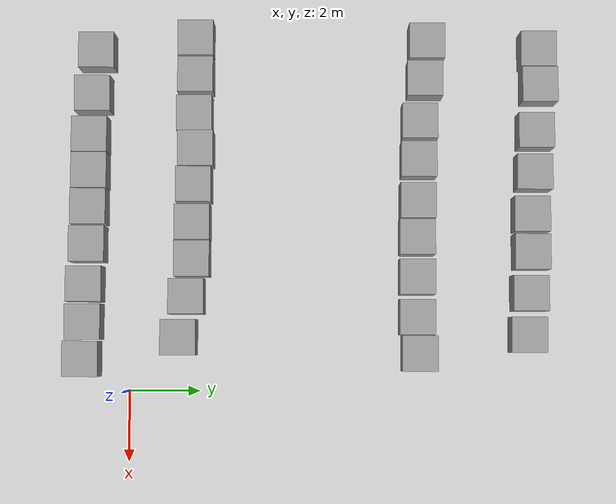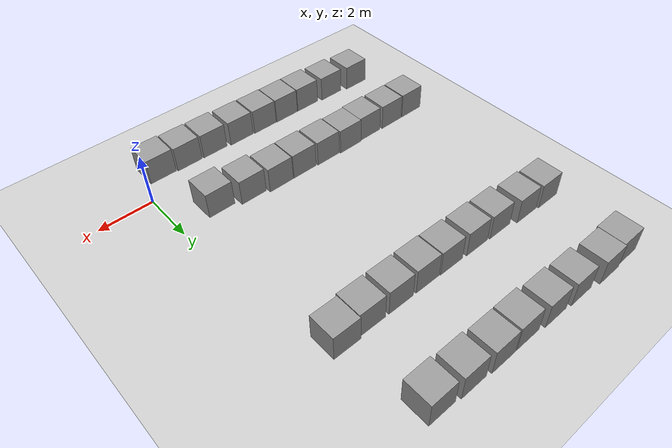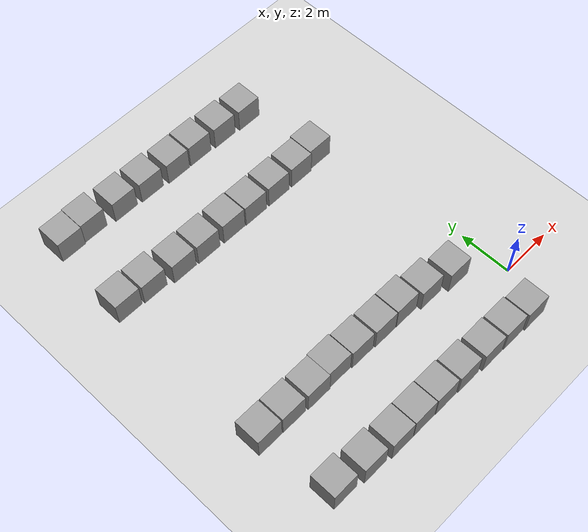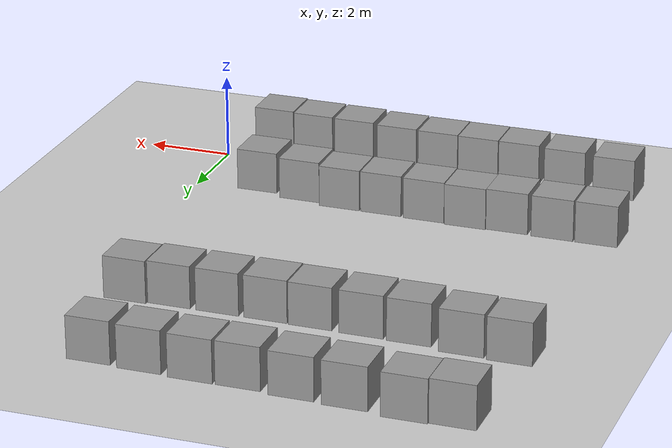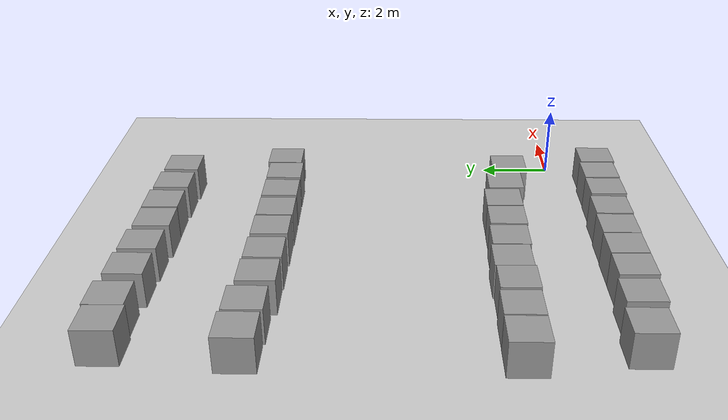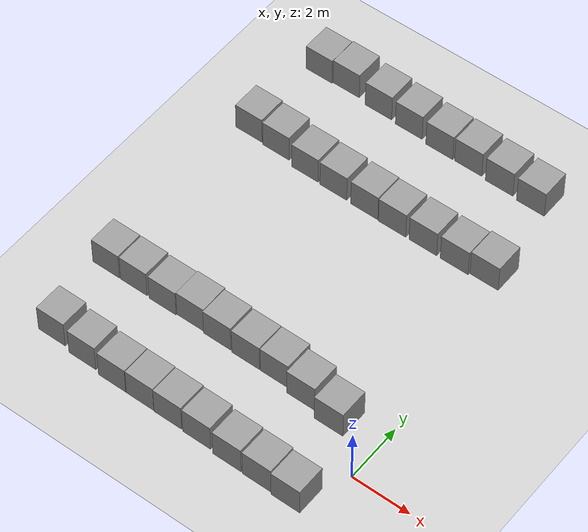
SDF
<sdf version="1.7">
 <world name="default">
  <model name="ground_plane">
   <static>1</static>
   <link name="link">
    <collision name="collision">
     <geometry><plane><normal>0 0 1</normal><size>100 100</size></plane></geometry>
     <surface><friction><ode><mu>100</mu><mu2>50</mu2></ode></friction></surface>
    </collision>
    <visual name="visual">
     <cast_shadows>0</cast_shadows>
     <geometry><plane><normal>0 0 1</normal><size>100 100</size></plane></geometry>
     <material>
      <script><uri>file://media/materials/scripts/gazebo.material</uri><name>Gazebo/Grey</name></script>
     </material>
    </visual>
   </link>
  </model>
  <model name="unit_box_68">
   <pose>-1.60407 11.2656 0.499995 -1e-05 0 0</pose>
   <link name="link">
    <inertial>
     <mass>1</mass>
     <inertia>
      <ixx>0.166667</ixx>
      <ixy>0</ixy>
      <ixz>0</ixz>
      <iyy>0.166667</iyy>
      <iyz>0</iyz>
      <izz>0.166667</izz>
     </inertia>
    </inertial>
    <collision name="collision"><geometry><box><size>1 1 1</size></box></geometry></collision>
    <visual name="visual">
     <geometry><box><size>1 1 1</size></box></geometry>
     <material>
      <script><name>Gazebo/Grey</name><uri>file://media/materials/scripts/gazebo.material</uri></script>
     </material>
    </visual>
   </link>
  </model>
  <model name="unit_box_69">
   <pose>-1.07686 8.20701 0.499995 0 1e-05 0</pose>
   <link name="link">
    <inertial>
     <mass>1</mass>
     <inertia>
      <ixx>0.166667</ixx>
      <ixy>0</ixy>
      <ixz>0</ixz>
      <iyy>0.166667</iyy>
      <iyz>0</iyz>
      <izz>0.166667</izz>
     </inertia>
    </inertial>
    <collision name="collision"><geometry><box><size>1 1 1</size></box></geometry></collision>
    <visual name="visual">
     <geometry><box><size>1 1 1</size></box></geometry>
     <material>
      <script><name>Gazebo/Grey</name><uri>file://media/materials/scripts/gazebo.material</uri></script>
     </material>
    </visual>
   </link>
  </model>
  <model name="unit_box_70">
   <pose>-2.77324 11.3221 0.499995 -1e-05 0 0</pose>
   <link name="link">
    <inertial>
     <mass>1</mass>
     <inertia>
      <ixx>0.166667</ixx>
      <ixy>0</ixy>
      <ixz>0</ixz>
      <iyy>0.166667</iyy>
      <iyz>0</iyz>
      <izz>0.166667</izz>
     </inertia>
    </inertial>
    <collision name="collision"><geometry><box><size>1 1 1</size></box></geometry></collision>
    <visual name="visual">
     <geometry><box><size>1 1 1</size></box></geometry>
     <material>
      <script><name>Gazebo/Grey</name><uri>file://media/materials/scripts/gazebo.material</uri></script>
     </material>
    </visual>
   </link>
  </model>
  <model name="unit_box_71">
   <pose>-2.09643 8.13987 0.499995 0 1e-05 0</pose>
   <link name="link">
    <inertial>
     <mass>1</mass>
     <inertia>
      <ixx>0.166667</ixx>
      <ixy>0</ixy>
      <ixz>0</ixz>
      <iyy>0.166667</iyy>
      <iyz>0</iyz>
      <izz>0.166667</izz>
     </inertia>
    </inertial>
    <collision name="collision"><geometry><box><size>1 1 1</size></box></geometry></collision>
    <visual name="visual">
     <geometry><box><size>1 1 1</size></box></geometry>
     <material>
      <script><name>Gazebo/Grey</name><uri>file://media/materials/scripts/gazebo.material</uri></script>
     </material>
    </visual>
   </link>
  </model>
  <model name="unit_box_72">
   <pose>-3.9399 11.375 0.499995 -1e-05 0 0</pose>
   <link name="link">
    <inertial>
     <mass>1</mass>
     <inertia>
      <ixx>0.166667</ixx>
      <ixy>0</ixy>
      <ixz>0</ixz>
      <iyy>0.166667</iyy>
      <iyz>0</iyz>
      <izz>0.166667</izz>
     </inertia>
    </inertial>
    <collision name="collision"><geometry><box><size>1 1 1</size></box></geometry></collision>
    <visual name="visual">
     <geometry><box><size>1 1 1</size></box></geometry>
     <material>
      <script><name>Gazebo/Grey</name><uri>file://media/materials/scripts/gazebo.material</uri></script>
     </material>
    </visual>
   </link>
  </model>
  <model name="unit_box_73">
   <pose>-3.22691 8.14265 0.499995 0 1e-05 0</pose>
   <link name="link">
    <inertial>
     <mass>1</mass>
     <inertia>
      <ixx>0.166667</ixx>
      <ixy>0</ixy>
      <ixz>0</ixz>
      <iyy>0.166667</iyy>
      <iyz>0</iyz>
      <izz>0.166667</izz>
     </inertia>
    </inertial>
    <collision name="collision"><geometry><box><size>1 1 1</size></box></geometry></collision>
    <visual name="visual">
     <geometry><box><size>1 1 1</size></box></geometry>
     <material>
      <script><name>Gazebo/Grey</name><uri>file://media/materials/scripts/gazebo.material</uri></script>
     </material>
    </visual>
   </link>
  </model>
  <model name="unit_box_74">
   <pose>-5.00002 11.3706 0.499995 -1e-05 0 0</pose>
   <link name="link">
    <inertial>
     <mass>1</mass>
     <inertia>
      <ixx>0.166667</ixx>
      <ixy>0</ixy>
      <ixz>0</ixz>
      <iyy>0.166667</iyy>
      <iyz>0</iyz>
      <izz>0.166667</izz>
     </inertia>
    </inertial>
    <collision name="collision"><geometry><box><size>1 1 1</size></box></geometry></collision>
    <visual name="visual">
     <geometry><box><size>1 1 1</size></box></geometry>
     <material>
      <script><name>Gazebo/Grey</name><uri>file://media/materials/scripts/gazebo.material</uri></script>
     </material>
    </visual>
   </link>
  </model>
  <model name="unit_box_75">
   <pose>-6.19269 11.4491 0.499995 0 1e-05 0</pose>
   <link name="link">
    <inertial>
     <mass>1</mass>
     <inertia>
      <ixx>0.166667</ixx>
      <ixy>0</ixy>
      <ixz>0</ixz>
      <iyy>0.166667</iyy>
      <iyz>0</iyz>
      <izz>0.166667</izz>
     </inertia>
    </inertial>
    <collision name="collision"><geometry><box><size>1 1 1</size></box></geometry></collision>
    <visual name="visual">
     <geometry><box><size>1 1 1</size></box></geometry>
     <material>
      <script><name>Gazebo/Grey</name><uri>file://media/materials/scripts/gazebo.material</uri></script>
     </material>
    </visual>
   </link>
  </model>
  <model name="unit_box_76">
   <pose>-7.36966 11.5014 0.499995 -1e-05 0 0</pose>
   <link name="link">
    <inertial>
     <mass>1</mass>
     <inertia>
      <ixx>0.166667</ixx>
      <ixy>0</ixy>
      <ixz>0</ixz>
      <iyy>0.166667</iyy>
      <iyz>0</iyz>
      <izz>0.166667</izz>
     </inertia>
    </inertial>
    <collision name="collision"><geometry><box><size>1 1 1</size></box></geometry></collision>
    <visual name="visual">
     <geometry><box><size>1 1 1</size></box></geometry>
     <material>
      <script><name>Gazebo/Grey</name><uri>file://media/materials/scripts/gazebo.material</uri></script>
     </material>
    </visual>
   </link>
  </model>
  <model name="unit_box_77">
   <pose>-8.67595 11.6101 0.499995 0 1e-05 0</pose>
   <link name="link">
    <inertial>
     <mass>1</mass>
     <inertia>
      <ixx>0.166667</ixx>
      <ixy>0</ixy>
      <ixz>0</ixz>
      <iyy>0.166667</iyy>
      <iyz>0</iyz>
      <izz>0.166667</izz>
     </inertia>
    </inertial>
    <collision name="collision"><geometry><box><size>1 1 1</size></box></geometry></collision>
    <visual name="visual">
     <geometry><box><size>1 1 1</size></box></geometry>
     <material>
      <script><name>Gazebo/Grey</name><uri>file://media/materials/scripts/gazebo.material</uri></script>
     </material>
    </visual>
   </link>
  </model>
  <model name="unit_box_78">
   <pose>-9.68226 11.5677 0.499995 0 -1e-05 0</pose>
   <link name="link">
    <inertial>
     <mass>1</mass>
     <inertia>
      <ixx>0.166667</ixx>
      <ixy>0</ixy>
      <ixz>0</ixz>
      <iyy>0.166667</iyy>
      <iyz>0</iyz>
      <izz>0.166667</izz>
     </inertia>
    </inertial>
    <collision name="collision"><geometry><box><size>1 1 1</size></box></geometry></collision>
    <visual name="visual">
     <geometry><box><size>1 1 1</size></box></geometry>
     <material>
      <script><name>Gazebo/Grey</name><uri>file://media/materials/scripts/gazebo.material</uri></script>
     </material>
    </visual>
   </link>
  </model>
  <model name="unit_box_80">
   <pose>-4.3458 8.14363 0.499995 -1e-05 0 0</pose>
   <link name="link">
    <inertial>
     <mass>1</mass>
     <inertia>
      <ixx>0.166667</ixx>
      <ixy>0</ixy>
      <ixz>0</ixz>
      <iyy>0.166667</iyy>
      <iyz>0</iyz>
      <izz>0.166667</izz>
     </inertia>
    </inertial>
    <collision name="collision"><geometry><box><size>1 1 1</size></box></geometry></collision>
    <visual name="visual">
     <geometry><box><size>1 1 1</size></box></geometry>
     <material>
      <script><name>Gazebo/Grey</name><uri>file://media/materials/scripts/gazebo.material</uri></script>
     </material>
    </visual>
   </link>
  </model>
  <model name="unit_box_81">
   <pose>-5.37999 8.16639 0.499995 -1e-05 0 0</pose>
   <link name="link">
    <inertial>
     <mass>1</mass>
     <inertia>
      <ixx>0.166667</ixx>
      <ixy>0</ixy>
      <ixz>0</ixz>
      <iyy>0.166667</iyy>
      <iyz>0</iyz>
      <izz>0.166667</izz>
     </inertia>
    </inertial>
    <collision name="collision"><geometry><box><size>1 1 1</size></box></geometry></collision>
    <visual name="visual">
     <geometry><box><size>1 1 1</size></box></geometry>
     <material>
      <script><name>Gazebo/Grey</name><uri>file://media/materials/scripts/gazebo.material</uri></script>
     </material>
    </visual>
   </link>
  </model>
  <model name="unit_box_82">
   <pose>-6.5467 8.19298 0.499995 0 1e-05 0</pose>
   <link name="link">
    <inertial>
     <mass>1</mass>
     <inertia>
      <ixx>0.166667</ixx>
      <ixy>0</ixy>
      <ixz>0</ixz>
      <iyy>0.166667</iyy>
      <iyz>0</iyz>
      <izz>0.166667</izz>
     </inertia>
    </inertial>
    <collision name="collision"><geometry><box><size>1 1 1</size></box></geometry></collision>
    <visual name="visual">
     <geometry><box><size>1 1 1</size></box></geometry>
     <material>
      <script><name>Gazebo/Grey</name><uri>file://media/materials/scripts/gazebo.material</uri></script>
     </material>
    </visual>
   </link>
  </model>
  <model name="unit_box_83">
   <pose>-7.62958 8.22347 0.499995 0 -1e-05 0</pose>
   <link name="link">
    <inertial>
     <mass>1</mass>
     <inertia>
      <ixx>0.166667</ixx>
      <ixy>0</ixy>
      <ixz>0</ixz>
      <iyy>0.166667</iyy>
      <iyz>0</iyz>
      <izz>0.166667</izz>
     </inertia>
    </inertial>
    <collision name="collision"><geometry><box><size>1 1 1</size></box></geometry></collision>
    <visual name="visual">
     <geometry><box><size>1 1 1</size></box></geometry>
     <material>
      <script><name>Gazebo/Grey</name><uri>file://media/materials/scripts/gazebo.material</uri></script>
     </material>
    </visual>
   </link>
  </model>
  <model name="unit_box_84">
   <pose>-8.83422 8.36705 0.499995 0 1e-05 0</pose>
   <link name="link">
    <inertial>
     <mass>1</mass>
     <inertia>
      <ixx>0.166667</ixx>
      <ixy>0</ixy>
      <ixz>0</ixz>
      <iyy>0.166667</iyy>
      <iyz>0</iyz>
      <izz>0.166667</izz>
     </inertia>
    </inertial>
    <collision name="collision"><geometry><box><size>1 1 1</size></box></geometry></collision>
    <visual name="visual">
     <geometry><box><size>1 1 1</size></box></geometry>
     <material>
      <script><name>Gazebo/Grey</name><uri>file://media/materials/scripts/gazebo.material</uri></script>
     </material>
    </visual>
   </link>
  </model>
  <model name="unit_box_87">
   <pose>-9.9062 8.41725 0.499995 0 1e-05 0</pose>
   <link name="link">
    <inertial>
     <mass>1</mass>
     <inertia>
      <ixx>0.166667</ixx>
      <ixy>0</ixy>
      <ixz>0</ixz>
      <iyy>0.166667</iyy>
      <iyz>0</iyz>
      <izz>0.166667</izz>
     </inertia>
    </inertial>
    <collision name="collision"><geometry><box><size>1 1 1</size></box></geometry></collision>
    <visual name="visual">
     <geometry><box><size>1 1 1</size></box></geometry>
     <material>
      <script><name>Gazebo/Grey</name><uri>file://media/materials/scripts/gazebo.material</uri></script>
     </material>
    </visual>
   </link>
  </model>
  <model name="unit_box_117">
   <pose>-9.97691 1.86931 0.499995 0 1e-05 0</pose>
   <link name="link">
    <inertial>
     <mass>1</mass>
     <inertia>
      <ixx>0.166667</ixx>
      <ixy>0</ixy>
      <ixz>0</ixz>
      <iyy>0.166667</iyy>
      <iyz>0</iyz>
      <izz>0.166667</izz>
     </inertia>
    </inertial>
    <collision name="collision"><geometry><box><size>1 1 1</size></box></geometry></collision>
    <visual name="visual">
     <geometry><box><size>1 1 1</size></box></geometry>
     <material>
      <script><name>Gazebo/Grey</name><uri>file://media/materials/scripts/gazebo.material</uri></script>
     </material>
    </visual>
   </link>
  </model>
  <model name="unit_box_118">
   <pose>-8.93478 1.86691 0.499995 1e-05 -0 0</pose>
   <link name="link">
    <inertial>
     <mass>1</mass>
     <inertia>
      <ixx>0.166667</ixx>
      <ixy>0</ixy>
      <ixz>0</ixz>
      <iyy>0.166667</iyy>
      <iyz>0</iyz>
      <izz>0.166667</izz>
     </inertia>
    </inertial>
    <collision name="collision"><geometry><box><size>1 1 1</size></box></geometry></collision>
    <visual name="visual">
     <geometry><box><size>1 1 1</size></box></geometry>
     <material>
      <script><name>Gazebo/Grey</name><uri>file://media/materials/scripts/gazebo.material</uri></script>
     </material>
    </visual>
   </link>
  </model>
  <model name="unit_box_119">
   <pose>-7.84055 1.83815 0.499995 -0 -1e-05 0.002763</pose>
   <link name="link">
    <inertial>
     <mass>1</mass>
     <inertia>
      <ixx>0.166667</ixx>
      <ixy>0</ixy>
      <ixz>0</ixz>
      <iyy>0.166667</iyy>
      <iyz>0</iyz>
      <izz>0.166667</izz>
     </inertia>
    </inertial>
    <collision name="collision"><geometry><box><size>1 1 1</size></box></geometry></collision>
    <visual name="visual">
     <geometry><box><size>1 1 1</size></box></geometry>
     <material>
      <script><name>Gazebo/Grey</name><uri>file://media/materials/scripts/gazebo.material</uri></script>
     </material>
    </visual>
   </link>
  </model>
  <model name="unit_box_120">
   <pose>-6.84061 1.87689 0.499995 -0 1e-05 0.002709</pose>
   <link name="link">
    <inertial>
     <mass>1</mass>
     <inertia>
      <ixx>0.166667</ixx>
      <ixy>0</ixy>
      <ixz>0</ixz>
      <iyy>0.166667</iyy>
      <iyz>0</iyz>
      <izz>0.166667</izz>
     </inertia>
    </inertial>
    <collision name="collision"><geometry><box><size>1 1 1</size></box></geometry></collision>
    <visual name="visual">
     <geometry><box><size>1 1 1</size></box></geometry>
     <material>
      <script><name>Gazebo/Grey</name><uri>file://media/materials/scripts/gazebo.material</uri></script>
     </material>
    </visual>
   </link>
  </model>
  <model name="unit_box_121">
   <pose>-5.81978 1.82803 0.499995 0 1e-05 0</pose>
   <link name="link">
    <inertial>
     <mass>1</mass>
     <inertia>
      <ixx>0.166667</ixx>
      <ixy>0</ixy>
      <ixz>0</ixz>
      <iyy>0.166667</iyy>
      <iyz>0</iyz>
      <izz>0.166667</izz>
     </inertia>
    </inertial>
    <collision name="collision"><geometry><box><size>1 1 1</size></box></geometry></collision>
    <visual name="visual">
     <geometry><box><size>1 1 1</size></box></geometry>
     <material>
      <script><name>Gazebo/Grey</name><uri>file://media/materials/scripts/gazebo.material</uri></script>
     </material>
    </visual>
   </link>
  </model>
  <model name="unit_box_122">
   <pose>-4.75596 1.7931 0.499995 0 1e-05 0</pose>
   <link name="link">
    <inertial>
     <mass>1</mass>
     <inertia>
      <ixx>0.166667</ixx>
      <ixy>0</ixy>
      <ixz>0</ixz>
      <iyy>0.166667</iyy>
      <iyz>0</iyz>
      <izz>0.166667</izz>
     </inertia>
    </inertial>
    <collision name="collision"><geometry><box><size>1 1 1</size></box></geometry></collision>
    <visual name="visual">
     <geometry><box><size>1 1 1</size></box></geometry>
     <material>
      <script><name>Gazebo/Grey</name><uri>file://media/materials/scripts/gazebo.material</uri></script>
     </material>
    </visual>
   </link>
  </model>
  <model name="unit_box_123">
   <pose>-3.72552 1.78985 0.499995 0 1e-05 0</pose>
   <link name="link">
    <inertial>
     <mass>1</mass>
     <inertia>
      <ixx>0.166667</ixx>
      <ixy>0</ixy>
      <ixz>0</ixz>
      <iyy>0.166667</iyy>
      <iyz>0</iyz>
      <izz>0.166667</izz>
     </inertia>
    </inertial>
    <collision name="collision"><geometry><box><size>1 1 1</size></box></geometry></collision>
    <visual name="visual">
     <geometry><box><size>1 1 1</size></box></geometry>
     <material>
      <script><name>Gazebo/Grey</name><uri>file://media/materials/scripts/gazebo.material</uri></script>
     </material>
    </visual>
   </link>
  </model>
  <model name="unit_box_124">
   <pose>-2.66754 1.63848 0.499995 0 1e-05 0</pose>
   <link name="link">
    <inertial>
     <mass>1</mass>
     <inertia>
      <ixx>0.166667</ixx>
      <ixy>0</ixy>
      <ixz>0</ixz>
      <iyy>0.166667</iyy>
      <iyz>0</iyz>
      <izz>0.166667</izz>
     </inertia>
    </inertial>
    <collision name="collision"><geometry><box><size>1 1 1</size></box></geometry></collision>
    <visual name="visual">
     <geometry><box><size>1 1 1</size></box></geometry>
     <material>
      <script><name>Gazebo/Grey</name><uri>file://media/materials/scripts/gazebo.material</uri></script>
     </material>
    </visual>
   </link>
  </model>
  <model name="unit_box_125">
   <pose>-1.51822 1.42433 0.499995 -1e-05 -0 -0</pose>
   <link name="link">
    <inertial>
     <mass>1</mass>
     <inertia>
      <ixx>0.166667</ixx>
      <ixy>0</ixy>
      <ixz>0</ixz>
      <iyy>0.166667</iyy>
      <iyz>0</iyz>
      <izz>0.166667</izz>
     </inertia>
    </inertial>
    <collision name="collision"><geometry><box><size>1 1 1</size></box></geometry></collision>
    <visual name="visual">
     <geometry><box><size>1 1 1</size></box></geometry>
     <material>
      <script><name>Gazebo/Grey</name><uri>file://media/materials/scripts/gazebo.material</uri></script>
     </material>
    </visual>
   </link>
  </model>
  <model name="unit_box_128">
   <pose>-0.90612 -1.30563 0.499995 0 -1e-05 0</pose>
   <link name="link">
    <inertial>
     <mass>1</mass>
     <inertia>
      <ixx>0.166667</ixx>
      <ixy>0</ixy>
      <ixz>0</ixz>
      <iyy>0.166667</iyy>
      <iyz>0</iyz>
      <izz>0.166667</izz>
     </inertia>
    </inertial>
    <collision name="collision"><geometry><box><size>1 1 1</size></box></geometry></collision>
    <visual name="visual">
     <geometry><box><size>1 1 1</size></box></geometry>
     <material>
      <script><name>Gazebo/Grey</name><uri>file://media/materials/scripts/gazebo.material</uri></script>
     </material>
    </visual>
   </link>
  </model>
  <model name="unit_box_129">
   <pose>-1.94608 -1.25155 0.499995 -1e-05 0 0</pose>
   <link name="link">
    <inertial>
     <mass>1</mass>
     <inertia>
      <ixx>0.166667</ixx>
      <ixy>0</ixy>
      <ixz>0</ixz>
      <iyy>0.166667</iyy>
      <iyz>0</iyz>
      <izz>0.166667</izz>
     </inertia>
    </inertial>
    <collision name="collision"><geometry><box><size>1 1 1</size></box></geometry></collision>
    <visual name="visual">
     <geometry><box><size>1 1 1</size></box></geometry>
     <material>
      <script><name>Gazebo/Grey</name><uri>file://media/materials/scripts/gazebo.material</uri></script>
     </material>
    </visual>
   </link>
  </model>
  <model name="unit_box_130">
   <pose>-3.00827 -1.23218 0.499995 0 1e-05 0</pose>
   <link name="link">
    <inertial>
     <mass>1</mass>
     <inertia>
      <ixx>0.166667</ixx>
      <ixy>0</ixy>
      <ixz>0</ixz>
      <iyy>0.166667</iyy>
      <iyz>0</iyz>
      <izz>0.166667</izz>
     </inertia>
    </inertial>
    <collision name="collision"><geometry><box><size>1 1 1</size></box></geometry></collision>
    <visual name="visual">
     <geometry><box><size>1 1 1</size></box></geometry>
     <material>
      <script><name>Gazebo/Grey</name><uri>file://media/materials/scripts/gazebo.material</uri></script>
     </material>
    </visual>
   </link>
  </model>
  <model name="unit_box_131">
   <pose>-4.13807 -1.16413 0.499995 0 1e-05 0</pose>
   <link name="link">
    <inertial>
     <mass>1</mass>
     <inertia>
      <ixx>0.166667</ixx>
      <ixy>0</ixy>
      <ixz>0</ixz>
      <iyy>0.166667</iyy>
      <iyz>0</iyz>
      <izz>0.166667</izz>
     </inertia>
    </inertial>
    <collision name="collision"><geometry><box><size>1 1 1</size></box></geometry></collision>
    <visual name="visual">
     <geometry><box><size>1 1 1</size></box></geometry>
     <material>
      <script><name>Gazebo/Grey</name><uri>file://media/materials/scripts/gazebo.material</uri></script>
     </material>
    </visual>
   </link>
  </model>
  <model name="unit_box_132">
   <pose>-5.19182 -1.13485 0.499995 0 -1e-05 0</pose>
   <link name="link">
    <inertial>
     <mass>1</mass>
     <inertia>
      <ixx>0.166667</ixx>
      <ixy>0</ixy>
      <ixz>0</ixz>
      <iyy>0.166667</iyy>
      <iyz>0</iyz>
      <izz>0.166667</izz>
     </inertia>
    </inertial>
    <collision name="collision"><geometry><box><size>1 1 1</size></box></geometry></collision>
    <visual name="visual">
     <geometry><box><size>1 1 1</size></box></geometry>
     <material>
      <script><name>Gazebo/Grey</name><uri>file://media/materials/scripts/gazebo.material</uri></script>
     </material>
    </visual>
   </link>
  </model>
  <model name="unit_box_133">
   <pose>-6.21451 -1.11865 0.499995 0 -1e-05 0</pose>
   <link name="link">
    <inertial>
     <mass>1</mass>
     <inertia>
      <ixx>0.166667</ixx>
      <ixy>0</ixy>
      <ixz>0</ixz>
      <iyy>0.166667</iyy>
      <iyz>0</iyz>
      <izz>0.166667</izz>
     </inertia>
    </inertial>
    <collision name="collision"><geometry><box><size>1 1 1</size></box></geometry></collision>
    <visual name="visual">
     <geometry><box><size>1 1 1</size></box></geometry>
     <material>
      <script><name>Gazebo/Grey</name><uri>file://media/materials/scripts/gazebo.material</uri></script>
     </material>
    </visual>
   </link>
  </model>
  <model name="unit_box_134">
   <pose>-7.23651 -1.11583 0.499995 0 -1e-05 0</pose>
   <link name="link">
    <inertial>
     <mass>1</mass>
     <inertia>
      <ixx>0.166667</ixx>
      <ixy>0</ixy>
      <ixz>0</ixz>
      <iyy>0.166667</iyy>
      <iyz>0</iyz>
      <izz>0.166667</izz>
     </inertia>
    </inertial>
    <collision name="collision"><geometry><box><size>1 1 1</size></box></geometry></collision>
    <visual name="visual">
     <geometry><box><size>1 1 1</size></box></geometry>
     <material>
      <script><name>Gazebo/Grey</name><uri>file://media/materials/scripts/gazebo.material</uri></script>
     </material>
    </visual>
   </link>
  </model>
  <model name="unit_box_135">
   <pose>-8.39557 -1.03793 0.499995 0 -1e-05 0</pose>
   <link name="link">
    <inertial>
     <mass>1</mass>
     <inertia>
      <ixx>0.166667</ixx>
      <ixy>0</ixy>
      <ixz>0</ixz>
      <iyy>0.166667</iyy>
      <iyz>0</iyz>
      <izz>0.166667</izz>
     </inertia>
    </inertial>
    <collision name="collision"><geometry><box><size>1 1 1</size></box></geometry></collision>
    <visual name="visual">
     <geometry><box><size>1 1 1</size></box></geometry>
     <material>
      <script><name>Gazebo/Grey</name><uri>file://media/materials/scripts/gazebo.material</uri></script>
     </material>
    </visual>
   </link>
  </model>
  <model name="unit_box_136">
   <pose>-9.62361 -0.935877 0.499995 -1e-05 -0 -0</pose>
   <link name="link">
    <inertial>
     <mass>1</mass>
     <inertia>
      <ixx>0.166667</ixx>
      <ixy>0</ixy>
      <ixz>0</ixz>
      <iyy>0.166667</iyy>
      <iyz>0</iyz>
      <izz>0.166667</izz>
     </inertia>
    </inertial>
    <collision name="collision"><geometry><box><size>1 1 1</size></box></geometry></collision>
    <visual name="visual">
     <geometry><box><size>1 1 1</size></box></geometry>
     <material>
      <script><name>Gazebo/Grey</name><uri>file://media/materials/scripts/gazebo.material</uri></script>
     </material>
    </visual>
   </link>
  </model>
 </world>
</sdf>
